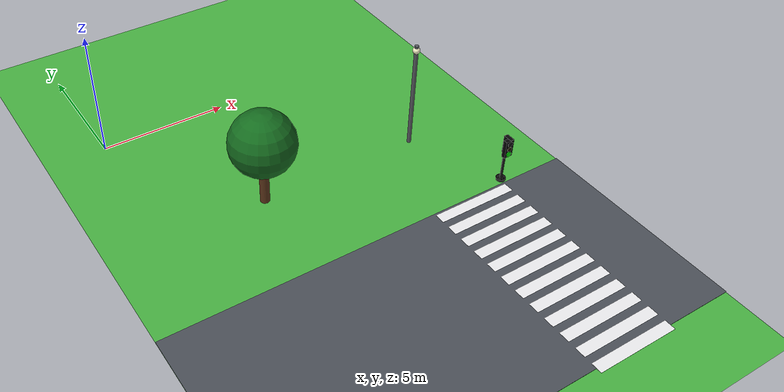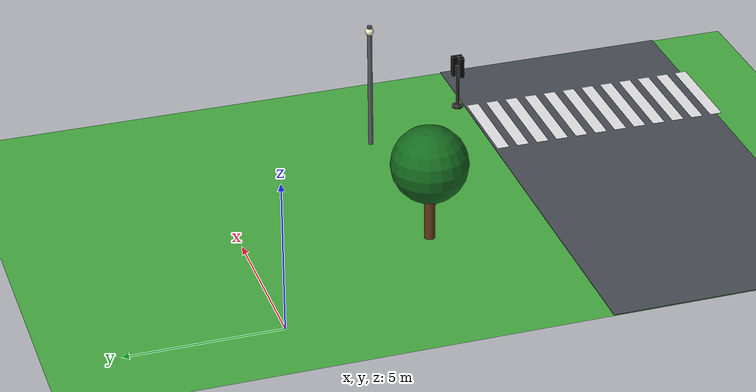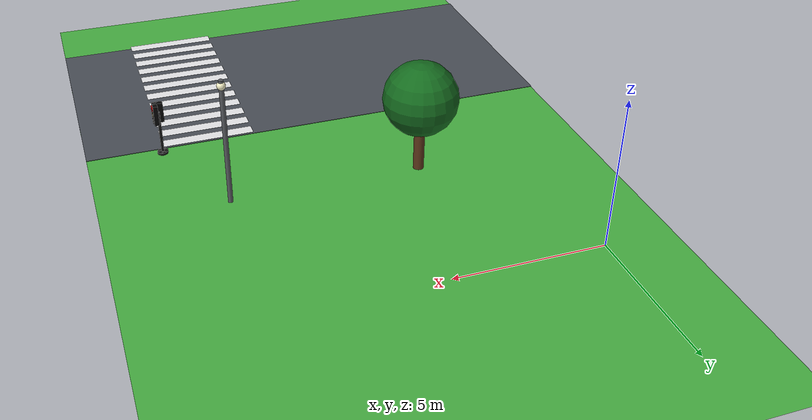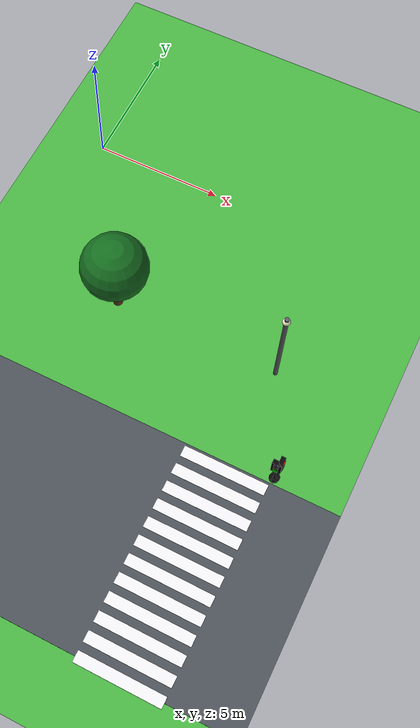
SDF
<sdf version="1.10">
 <world name="city_second">
  <model name="ground_plane">
   <static>true</static>
   <link name="link">
    <collision name="collision">
     <geometry><plane><normal>0 0 1</normal><size>300 300</size></plane></geometry>
    </collision>
    <visual name="visual">
     <geometry><plane><normal>0 0 1</normal><size>300 300</size></plane></geometry>
     <material>
      <ambient>0.280000001 0.689999998 0.25999999 1</ambient>
      <diffuse>0.280000001 0.689999998 0.25999999 1</diffuse>
      <specular>0.0299999993 0.0299999993 0.0299999993 1</specular>
     </material>
    </visual>
    <inertial>
     <mass>1</mass>
     <inertia><ixx>1</ixx><ixy>0</ixy><ixz>0</ixz><iyy>1</iyy><iyz>0</iyz><izz>1</izz></inertia>
    </inertial>
   </link>
  </model>
  <model name="crosswalk_v_2_1_east_5_3">
   <static>true</static>
   <pose>10.1084 -13.809400000000002 0.017000000000000001 0 0 0</pose>
   <link name="stripe_1">
    <collision name="collision">
     <geometry><box><size>3.2000000000000002 0.41999999999999998 0.01</size></box></geometry>
    </collision>
    <visual name="visual">
     <geometry><box><size>3.2000000000000002 0.41999999999999998 0.01</size></box></geometry>
     <material>
      <ambient>0.920000017 0.920000017 0.930000007 1</ambient>
      <diffuse>0.920000017 0.920000017 0.930000007 1</diffuse>
      <specular>0.0299999993 0.0299999993 0.0299999993 1</specular>
     </material>
    </visual>
    <pose>0 -3.8500000000000001 0 0 0 0</pose>
    <inertial>
     <mass>1</mass>
     <inertia><ixx>1</ixx><ixy>0</ixy><ixz>0</ixz><iyy>1</iyy><iyz>0</iyz><izz>1</izz></inertia>
    </inertial>
   </link>
   <link name="stripe_2">
    <collision name="collision">
     <geometry><box><size>3.2000000000000002 0.41999999999999998 0.01</size></box></geometry>
    </collision>
    <visual name="visual">
     <geometry><box><size>3.2000000000000002 0.41999999999999998 0.01</size></box></geometry>
     <material>
      <ambient>0.920000017 0.920000017 0.930000007 1</ambient>
      <diffuse>0.920000017 0.920000017 0.930000007 1</diffuse>
      <specular>0.0299999993 0.0299999993 0.0299999993 1</specular>
     </material>
    </visual>
    <pose>0 -3.1499999999999968 0 0 0 0</pose>
    <inertial>
     <mass>1</mass>
     <inertia><ixx>1</ixx><ixy>0</ixy><ixz>0</ixz><iyy>1</iyy><iyz>0</iyz><izz>1</izz></inertia>
    </inertial>
   </link>
   <link name="stripe_3">
    <collision name="collision">
     <geometry><box><size>3.2000000000000002 0.41999999999999998 0.01</size></box></geometry>
    </collision>
    <visual name="visual">
     <geometry><box><size>3.2000000000000002 0.41999999999999998 0.01</size></box></geometry>
     <material>
      <ambient>0.920000017 0.920000017 0.930000007 1</ambient>
      <diffuse>0.920000017 0.920000017 0.930000007 1</diffuse>
      <specular>0.0299999993 0.0299999993 0.0299999993 1</specular>
     </material>
    </visual>
    <pose>0 -2.4499999999999975 0 0 0 0</pose>
    <inertial>
     <mass>1</mass>
     <inertia><ixx>1</ixx><ixy>0</ixy><ixz>0</ixz><iyy>1</iyy><iyz>0</iyz><izz>1</izz></inertia>
    </inertial>
   </link>
   <link name="stripe_4">
    <collision name="collision">
     <geometry><box><size>3.2000000000000002 0.41999999999999998 0.01</size></box></geometry>
    </collision>
    <visual name="visual">
     <geometry><box><size>3.2000000000000002 0.41999999999999998 0.01</size></box></geometry>
     <material>
      <ambient>0.920000017 0.920000017 0.930000007 1</ambient>
      <diffuse>0.920000017 0.920000017 0.930000007 1</diffuse>
      <specular>0.0299999993 0.0299999993 0.0299999993 1</specular>
     </material>
    </visual>
    <pose>0 -1.7499999999999982 0 0 0 0</pose>
    <inertial>
     <mass>1</mass>
     <inertia><ixx>1</ixx><ixy>0</ixy><ixz>0</ixz><iyy>1</iyy><iyz>0</iyz><izz>1</izz></inertia>
    </inertial>
   </link>
   <link name="stripe_5">
    <collision name="collision">
     <geometry><box><size>3.2000000000000002 0.41999999999999998 0.01</size></box></geometry>
    </collision>
    <visual name="visual">
     <geometry><box><size>3.2000000000000002 0.41999999999999998 0.01</size></box></geometry>
     <material>
      <ambient>0.920000017 0.920000017 0.930000007 1</ambient>
      <diffuse>0.920000017 0.920000017 0.930000007 1</diffuse>
      <specular>0.0299999993 0.0299999993 0.0299999993 1</specular>
     </material>
    </visual>
    <pose>0 -1.0499999999999989 0 0 0 0</pose>
    <inertial>
     <mass>1</mass>
     <inertia><ixx>1</ixx><ixy>0</ixy><ixz>0</ixz><iyy>1</iyy><iyz>0</iyz><izz>1</izz></inertia>
    </inertial>
   </link>
   <link name="stripe_6">
    <collision name="collision">
     <geometry><box><size>3.2000000000000002 0.41999999999999998 0.01</size></box></geometry>
    </collision>
    <visual name="visual">
     <geometry><box><size>3.2000000000000002 0.41999999999999998 0.01</size></box></geometry>
     <material>
      <ambient>0.920000017 0.920000017 0.930000007 1</ambient>
      <diffuse>0.920000017 0.920000017 0.930000007 1</diffuse>
      <specular>0.0299999993 0.0299999993 0.0299999993 1</specular>
     </material>
    </visual>
    <pose>0 -0.34999999999999787 0 0 0 0</pose>
    <inertial>
     <mass>1</mass>
     <inertia><ixx>1</ixx><ixy>0</ixy><ixz>0</ixz><iyy>1</iyy><iyz>0</iyz><izz>1</izz></inertia>
    </inertial>
   </link>
   <link name="stripe_7">
    <collision name="collision">
     <geometry><box><size>3.2000000000000002 0.41999999999999998 0.01</size></box></geometry>
    </collision>
    <visual name="visual">
     <geometry><box><size>3.2000000000000002 0.41999999999999998 0.01</size></box></geometry>
     <material>
      <ambient>0.920000017 0.920000017 0.930000007 1</ambient>
      <diffuse>0.920000017 0.920000017 0.930000007 1</diffuse>
      <specular>0.0299999993 0.0299999993 0.0299999993 1</specular>
     </material>
    </visual>
    <pose>0 0.35000000000000142 0 0 0 0</pose>
    <inertial>
     <mass>1</mass>
     <inertia><ixx>1</ixx><ixy>0</ixy><ixz>0</ixz><iyy>1</iyy><iyz>0</iyz><izz>1</izz></inertia>
    </inertial>
   </link>
   <link name="stripe_8">
    <collision name="collision">
     <geometry><box><size>3.2000000000000002 0.41999999999999998 0.01</size></box></geometry>
    </collision>
    <visual name="visual">
     <geometry><box><size>3.2000000000000002 0.41999999999999998 0.01</size></box></geometry>
     <material>
      <ambient>0.920000017 0.920000017 0.930000007 1</ambient>
      <diffuse>0.920000017 0.920000017 0.930000007 1</diffuse>
      <specular>0.0299999993 0.0299999993 0.0299999993 1</specular>
     </material>
    </visual>
    <pose>0 1.0500000000000025 0 0 0 0</pose>
    <inertial>
     <mass>1</mass>
     <inertia><ixx>1</ixx><ixy>0</ixy><ixz>0</ixz><iyy>1</iyy><iyz>0</iyz><izz>1</izz></inertia>
    </inertial>
   </link>
   <link name="stripe_9">
    <collision name="collision">
     <geometry><box><size>3.2000000000000002 0.41999999999999998 0.01</size></box></geometry>
    </collision>
    <visual name="visual">
     <geometry><box><size>3.2000000000000002 0.41999999999999998 0.01</size></box></geometry>
     <material>
      <ambient>0.920000017 0.920000017 0.930000007 1</ambient>
      <diffuse>0.920000017 0.920000017 0.930000007 1</diffuse>
      <specular>0.0299999993 0.0299999993 0.0299999993 1</specular>
     </material>
    </visual>
    <pose>0 1.7500000000000018 0 0 0 0</pose>
    <inertial>
     <mass>1</mass>
     <inertia><ixx>1</ixx><ixy>0</ixy><ixz>0</ixz><iyy>1</iyy><iyz>0</iyz><izz>1</izz></inertia>
    </inertial>
   </link>
   <link name="stripe_10">
    <collision name="collision">
     <geometry><box><size>3.2000000000000002 0.41999999999999998 0.01</size></box></geometry>
    </collision>
    <visual name="visual">
     <geometry><box><size>3.2000000000000002 0.41999999999999998 0.01</size></box></geometry>
     <material>
      <ambient>0.920000017 0.920000017 0.930000007 1</ambient>
      <diffuse>0.920000017 0.920000017 0.930000007 1</diffuse>
      <specular>0.0299999993 0.0299999993 0.0299999993 1</specular>
     </material>
    </visual>
    <pose>0 2.4500000000000011 0 0 0 0</pose>
    <inertial>
     <mass>1</mass>
     <inertia><ixx>1</ixx><ixy>0</ixy><ixz>0</ixz><iyy>1</iyy><iyz>0</iyz><izz>1</izz></inertia>
    </inertial>
   </link>
   <link name="stripe_11">
    <collision name="collision">
     <geometry><box><size>3.2000000000000002 0.41999999999999998 0.01</size></box></geometry>
    </collision>
    <visual name="visual">
     <geometry><box><size>3.2000000000000002 0.41999999999999998 0.01</size></box></geometry>
     <material>
      <ambient>0.920000017 0.920000017 0.930000007 1</ambient>
      <diffuse>0.920000017 0.920000017 0.930000007 1</diffuse>
      <specular>0.0299999993 0.0299999993 0.0299999993 1</specular>
     </material>
    </visual>
    <pose>0 3.1500000000000021 0 0 0 0</pose>
    <inertial>
     <mass>1</mass>
     <inertia><ixx>1</ixx><ixy>0</ixy><ixz>0</ixz><iyy>1</iyy><iyz>0</iyz><izz>1</izz></inertia>
    </inertial>
   </link>
   <link name="stripe_12">
    <collision name="collision">
     <geometry><box><size>3.2000000000000002 0.41999999999999998 0.01</size></box></geometry>
    </collision>
    <visual name="visual">
     <geometry><box><size>3.2000000000000002 0.41999999999999998 0.01</size></box></geometry>
     <material>
      <ambient>0.920000017 0.920000017 0.930000007 1</ambient>
      <diffuse>0.920000017 0.920000017 0.930000007 1</diffuse>
      <specular>0.0299999993 0.0299999993 0.0299999993 1</specular>
     </material>
    </visual>
    <pose>0 3.8500000000000014 0 0 0 0</pose>
    <inertial>
     <mass>1</mass>
     <inertia><ixx>1</ixx><ixy>0</ixy><ixz>0</ixz><iyy>1</iyy><iyz>0</iyz><izz>1</izz></inertia>
    </inertial>
   </link>
  </model>
  <model name="road_h_2_1">
   <static>true</static>
   <pose>0.20479899644851685 -13.668000221252441 0.0099999997764825821 0 0 0</pose>
   <link name="link">
    <collision name="collision"><geometry><box><size>84 8 0.02</size></box></geometry></collision>
    <visual name="visual">
     <geometry><box><size>84 8 0.02</size></box></geometry>
     <material>
      <ambient>0.289999992 0.310000002 0.340000004 1</ambient>
      <diffuse>0.289999992 0.310000002 0.340000004 1</diffuse>
      <specular>0.0299999993 0.0299999993 0.0299999993 1</specular>
     </material>
    </visual>
    <inertial>
     <mass>1</mass>
     <inertia><ixx>1</ixx><ixy>0</ixy><ixz>0</ixz><iyy>1</iyy><iyz>0</iyz><izz>1</izz></inertia>
    </inertial>
   </link>
  </model>
  <model name="lamp_1_2_9">
   <static>true</static>
   <pose>10.194599999999999 -5.8334599999999996 2.2000000000000002 0 0 0</pose>
   <link name="link">
    <collision name="collision">
     <geometry>
      <cylinder><radius>0.080000000000000002</radius><length>4.4000000000000004</length></cylinder>
     </geometry>
    </collision>
    <visual name="pole">
     <geometry>
      <cylinder><radius>0.080000000000000002</radius><length>4.4000000000000004</length></cylinder>
     </geometry>
     <material>
      <ambient>0.349999994 0.360000014 0.379999995 1</ambient>
      <diffuse>0.349999994 0.360000014 0.379999995 1</diffuse>
      <specular>0.0299999993 0.0299999993 0.0299999993 1</specular>
     </material>
    </visual>
    <visual name="lamp_head">
     <pose>0 0 2 0 0 0</pose>
     <geometry><sphere><radius>0.14000000000000001</radius></sphere></geometry>
     <material>
      <ambient>0.959999979 0.939999998 0.779999971 1</ambient>
      <diffuse>0.959999979 0.939999998 0.779999971 1</diffuse>
      <specular>0.0299999993 0.0299999993 0.0299999993 1</specular>
     </material>
    </visual>
    <inertial>
     <mass>1</mass>
     <inertia><ixx>1</ixx><ixy>0</ixy><ixz>0</ixz><iyy>1</iyy><iyz>0</iyz><izz>1</izz></inertia>
    </inertial>
   </link>
  </model>
  <model name="Oak tree_3">
   <static>true</static>
   <pose>3.7745000000000002 -5.8038400000000001 0 0 0 0</pose>
   <link name="link">
    <collision name="footprint">
     <pose>0 0 0.050000000000000003 0 0 0</pose>
     <geometry>
      <cylinder><radius>0.90000000000000002</radius><length>0.10000000000000001</length></cylinder>
     </geometry>
    </collision>
    <visual name="trunk">
     <pose>0 0 1.1000000000000001 0 0 0</pose>
     <geometry>
      <cylinder><radius>0.17999999999999999</radius><length>2.2000000000000002</length></cylinder>
     </geometry>
     <material>
      <ambient>0.379999995 0.219999999 0.109999999 1</ambient>
      <diffuse>0.379999995 0.219999999 0.109999999 1</diffuse>
      <specular>0.119999997 0.119999997 0.119999997 1</specular>
      <emissive>0 0 0 1</emissive>
     </material>
    </visual>
    <visual name="crown">
     <pose>0 0 2.6499999999999999 0 0 0</pose>
     <geometry><sphere><radius>1.25</radius></sphere></geometry>
     <material>
      <ambient>0.0799999982 0.419999987 0.119999997 1</ambient>
      <diffuse>0.0799999982 0.419999987 0.119999997 1</diffuse>
      <specular>0.119999997 0.119999997 0.119999997 1</specular>
      <emissive>0 0 0 1</emissive>
     </material>
    </visual>
    <inertial>
     <mass>1</mass>
     <inertia><ixx>1</ixx><ixy>0</ixy><ixz>0</ixz><iyy>1</iyy><iyz>0</iyz><izz>1</izz></inertia>
    </inertial>
   </link>
  </model>
  <model name="simple_traffic_light_red_east_2">
   <static>true</static>
   <pose>11.774926698468439 -9.4165716174160607 -2.7755575615628914e-17 0 0 -1.5707999672671742</pose>
   <link name="base">
    <pose>0 0 0.040000000000000001 0 0 0</pose>
    <collision name="collision">
     <geometry>
      <cylinder><radius>0.17999999999999999</radius><length>0.080000000000000002</length></cylinder>
     </geometry>
    </collision>
    <visual name="visual">
     <geometry>
      <cylinder><radius>0.17999999999999999</radius><length>0.080000000000000002</length></cylinder>
     </geometry>
     <material>
      <ambient>0.0799999982 0.0799999982 0.0799999982 1</ambient>
      <diffuse>0.0799999982 0.0799999982 0.0799999982 1</diffuse>
      <specular>0.150000006 0.150000006 0.150000006 1</specular>
      <emissive>0 0 0 1</emissive>
     </material>
    </visual>
    <inertial>
     <mass>1</mass>
     <inertia><ixx>1</ixx><ixy>0</ixy><ixz>0</ixz><iyy>1</iyy><iyz>0</iyz><izz>1</izz></inertia>
    </inertial>
   </link>
   <link name="pole">
    <pose>-1.7763568394002505e-14 2.6645352591003757e-14 0.80000000000000004 0 0 -6.6613381477509392e-16</pose>
    <collision name="collision">
     <geometry>
      <cylinder><radius>0.044999999999999998</radius><length>1.6000000000000001</length></cylinder>
     </geometry>
    </collision>
    <visual name="visual">
     <geometry>
      <cylinder><radius>0.044999999999999998</radius><length>1.6000000000000001</length></cylinder>
     </geometry>
     <material>
      <ambient>0.0799999982 0.0799999982 0.0799999982 1</ambient>
      <diffuse>0.0799999982 0.0799999982 0.0799999982 1</diffuse>
      <specular>0.150000006 0.150000006 0.150000006 1</specular>
      <emissive>0 0 0 1</emissive>
     </material>
    </visual>
    <inertial>
     <mass>1</mass>
     <inertia><ixx>1</ixx><ixy>0</ixy><ixz>0</ixz><iyy>1</iyy><iyz>0</iyz><izz>1</izz></inertia>
    </inertial>
   </link>
   <link name="signal_box">
    <pose>1.7763568394002505e-15 0.090000000000019398 1.5500000000000003 0 0 -6.6613381477509392e-16</pose>
    <collision name="collision">
     <geometry><box><size>0.34000000000000002 0.16 0.71999999999999997</size></box></geometry>
    </collision>
    <visual name="visual">
     <geometry><box><size>0.34000000000000002 0.16 0.71999999999999997</size></box></geometry>
     <material>
      <ambient>0.0199999996 0.0199999996 0.0199999996 1</ambient>
      <diffuse>0.0199999996 0.0199999996 0.0199999996 1</diffuse>
      <specular>0.150000006 0.150000006 0.150000006 1</specular>
      <emissive>0 0 0 1</emissive>
     </material>
    </visual>
    <inertial>
     <mass>1</mass>
     <inertia><ixx>1</ixx><ixy>0</ixy><ixz>0</ixz><iyy>1</iyy><iyz>0</iyz><izz>1</izz></inertia>
    </inertial>
   </link>
   <link name="red_lens">
    <pose>-2.4868995751603507e-14 0.18100000000002758 1.7800000000000002 1.5707963267999998 -2.3551386881478525e-16 4.7887819989849136e-15</pose>
    <collision name="collision">
     <geometry><cylinder><radius>0.105</radius><length>0.035000000000000003</length></cylinder></geometry>
    </collision>
    <visual name="visual">
     <geometry><cylinder><radius>0.105</radius><length>0.035000000000000003</length></cylinder></geometry>
     <material>
      <ambient>1 0.0199999996 0.0199999996 1</ambient>
      <diffuse>1 0.0199999996 0.0199999996 1</diffuse>
      <specular>0.150000006 0.150000006 0.150000006 1</specular>
      <emissive>1 0.0199999996 0.0199999996 1</emissive>
     </material>
    </visual>
    <inertial>
     <mass>1</mass>
     <inertia><ixx>1</ixx><ixy>0</ixy><ixz>0</ixz><iyy>1</iyy><iyz>0</iyz><izz>1</izz></inertia>
    </inertial>
   </link>
   <link name="yellow_lens">
    <pose>-1.7763568394002505e-14 0.18200000000001992 1.5500000000000003 1.5707963267999998 -2.3551386881478525e-16 4.7887819989849136e-15</pose>
    <collision name="collision">
     <geometry>
      <cylinder><radius>0.095000000000000001</radius><length>0.035000000000000003</length></cylinder>
     </geometry>
    </collision>
    <visual name="visual">
     <geometry>
      <cylinder><radius>0.095000000000000001</radius><length>0.035000000000000003</length></cylinder>
     </geometry>
     <material>
      <ambient>0.119999997 0.100000001 0.0199999996 1</ambient>
      <diffuse>0.119999997 0.100000001 0.0199999996 1</diffuse>
      <specular>0.150000006 0.150000006 0.150000006 1</specular>
      <emissive>0 0 0 1</emissive>
     </material>
    </visual>
    <inertial>
     <mass>1</mass>
     <inertia><ixx>1</ixx><ixy>0</ixy><ixz>0</ixz><iyy>1</iyy><iyz>0</iyz><izz>1</izz></inertia>
    </inertial>
   </link>
   <link name="green_lens">
    <pose>-5.3290705182007514e-15 0.18300000000002292 1.3199999999999998 1.5707963267999998 -2.3551386881478525e-16 4.7887819989849136e-15</pose>
    <collision name="collision">
     <geometry><cylinder><radius>0.105</radius><length>0.035000000000000003</length></cylinder></geometry>
    </collision>
    <visual name="visual">
     <geometry><cylinder><radius>0.105</radius><length>0.035000000000000003</length></cylinder></geometry>
     <material>
      <ambient>0.0799999982 0.0799999982 0.0799999982 1</ambient>
      <diffuse>0.0799999982 0.0799999982 0.0799999982 1</diffuse>
      <specular>0.150000006 0.150000006 0.150000006 1</specular>
      <emissive>0 0 0 1</emissive>
     </material>
    </visual>
    <inertial>
     <mass>1</mass>
     <inertia><ixx>1</ixx><ixy>0</ixy><ixz>0</ixz><iyy>1</iyy><iyz>0</iyz><izz>1</izz></inertia>
    </inertial>
   </link>
  </model>
  <model name="simple_traffic_light_green_south_1_3">
   <static>true</static>
   <pose>11.765058665459204 -9.44188907987707 0 0 0 -3.1415900000000754</pose>
   <link name="base">
    <pose>0 0 0.040000000000000001 0 0 0</pose>
    <collision name="collision">
     <geometry>
      <cylinder><radius>0.17999999999999999</radius><length>0.080000000000000002</length></cylinder>
     </geometry>
    </collision>
    <visual name="visual">
     <geometry>
      <cylinder><radius>0.17999999999999999</radius><length>0.080000000000000002</length></cylinder>
     </geometry>
     <material>
      <ambient>0.0799999982 0.0799999982 0.0799999982 1</ambient>
      <diffuse>0.0799999982 0.0799999982 0.0799999982 1</diffuse>
      <specular>0.150000006 0.150000006 0.150000006 1</specular>
      <emissive>0 0 0 1</emissive>
     </material>
    </visual>
    <inertial>
     <mass>1</mass>
     <inertia><ixx>1</ixx><ixy>0</ixy><ixz>0</ixz><iyy>1</iyy><iyz>0</iyz><izz>1</izz></inertia>
    </inertial>
   </link>
   <link name="pole">
    <pose>-1.2434497875801753e-14 -2.4868995751603507e-14 0.80000000000000082 0 0 0</pose>
    <collision name="collision">
     <geometry>
      <cylinder><radius>0.044999999999999998</radius><length>1.6000000000000001</length></cylinder>
     </geometry>
    </collision>
    <visual name="visual">
     <geometry>
      <cylinder><radius>0.044999999999999998</radius><length>1.6000000000000001</length></cylinder>
     </geometry>
     <material>
      <ambient>0.0799999982 0.0799999982 0.0799999982 1</ambient>
      <diffuse>0.0799999982 0.0799999982 0.0799999982 1</diffuse>
      <specular>0.150000006 0.150000006 0.150000006 1</specular>
      <emissive>0 0 0 1</emissive>
     </material>
    </visual>
    <inertial>
     <mass>1</mass>
     <inertia><ixx>1</ixx><ixy>0</ixy><ixz>0</ixz><iyy>1</iyy><iyz>0</iyz><izz>1</izz></inertia>
    </inertial>
   </link>
   <link name="signal_box">
    <pose>-1.2434497875801753e-14 0.089999999999987423 1.5500000000000016 0 0 0</pose>
    <collision name="collision">
     <geometry><box><size>0.34000000000000002 0.16 0.71999999999999997</size></box></geometry>
    </collision>
    <visual name="visual">
     <geometry><box><size>0.34000000000000002 0.16 0.71999999999999997</size></box></geometry>
     <material>
      <ambient>0.0199999996 0.0199999996 0.0199999996 1</ambient>
      <diffuse>0.0199999996 0.0199999996 0.0199999996 1</diffuse>
      <specular>0.150000006 0.150000006 0.150000006 1</specular>
      <emissive>0 0 0 1</emissive>
     </material>
    </visual>
    <inertial>
     <mass>1</mass>
     <inertia><ixx>1</ixx><ixy>0</ixy><ixz>0</ixz><iyy>1</iyy><iyz>0</iyz><izz>1</izz></inertia>
    </inertial>
   </link>
   <link name="red_lens">
    <pose>-1.2434497875801753e-14 0.18099999999997607 1.78 1.5707963267999998 1.2475048931562623e-16 -1.2475078878636004e-16</pose>
    <collision name="collision">
     <geometry><cylinder><radius>0.105</radius><length>0.035000000000000003</length></cylinder></geometry>
    </collision>
    <visual name="visual">
     <geometry><cylinder><radius>0.105</radius><length>0.035000000000000003</length></cylinder></geometry>
     <material>
      <ambient>0.0799999982 0.0799999982 0.0799999982 1</ambient>
      <diffuse>0.0799999982 0.0799999982 0.0799999982 1</diffuse>
      <specular>0.150000006 0.150000006 0.150000006 1</specular>
      <emissive>0 0 0 1</emissive>
     </material>
    </visual>
    <inertial>
     <mass>1</mass>
     <inertia><ixx>1</ixx><ixy>0</ixy><ixz>0</ixz><iyy>1</iyy><iyz>0</iyz><izz>1</izz></inertia>
    </inertial>
   </link>
   <link name="yellow_lens">
    <pose>-1.2434497875801753e-14 0.18199999999996308 1.5500000000000016 1.5707963267999998 1.2475048931562623e-16 -1.2475078878636004e-16</pose>
    <collision name="collision">
     <geometry>
      <cylinder><radius>0.095000000000000001</radius><length>0.035000000000000003</length></cylinder>
     </geometry>
    </collision>
    <visual name="visual">
     <geometry>
      <cylinder><radius>0.095000000000000001</radius><length>0.035000000000000003</length></cylinder>
     </geometry>
     <material>
      <ambient>0.119999997 0.100000001 0.0199999996 1</ambient>
      <diffuse>0.119999997 0.100000001 0.0199999996 1</diffuse>
      <specular>0.150000006 0.150000006 0.150000006 1</specular>
      <emissive>0 0 0 1</emissive>
     </material>
    </visual>
    <inertial>
     <mass>1</mass>
     <inertia><ixx>1</ixx><ixy>0</ixy><ixz>0</ixz><iyy>1</iyy><iyz>0</iyz><izz>1</izz></inertia>
    </inertial>
   </link>
   <link name="green_lens">
    <pose>-1.2434497875801753e-14 0.18299999999997496 1.3200000000000016 1.5707963267999998 1.2475048931562623e-16 -1.2475078878636004e-16</pose>
    <collision name="collision">
     <geometry><cylinder><radius>0.105</radius><length>0.035000000000000003</length></cylinder></geometry>
    </collision>
    <visual name="visual">
     <geometry><cylinder><radius>0.105</radius><length>0.035000000000000003</length></cylinder></geometry>
     <material>
      <ambient>0.0199999996 1 0.0199999996 1</ambient>
      <diffuse>0.0199999996 1 0.0199999996 1</diffuse>
      <specular>0.150000006 0.150000006 0.150000006 1</specular>
      <emissive>0.0199999996 1 0.0199999996 1</emissive>
     </material>
    </visual>
    <inertial>
     <mass>1</mass>
     <inertia><ixx>1</ixx><ixy>0</ixy><ixz>0</ixz><iyy>1</iyy><iyz>0</iyz><izz>1</izz></inertia>
    </inertial>
   </link>
  </model>
 </world>
</sdf>
